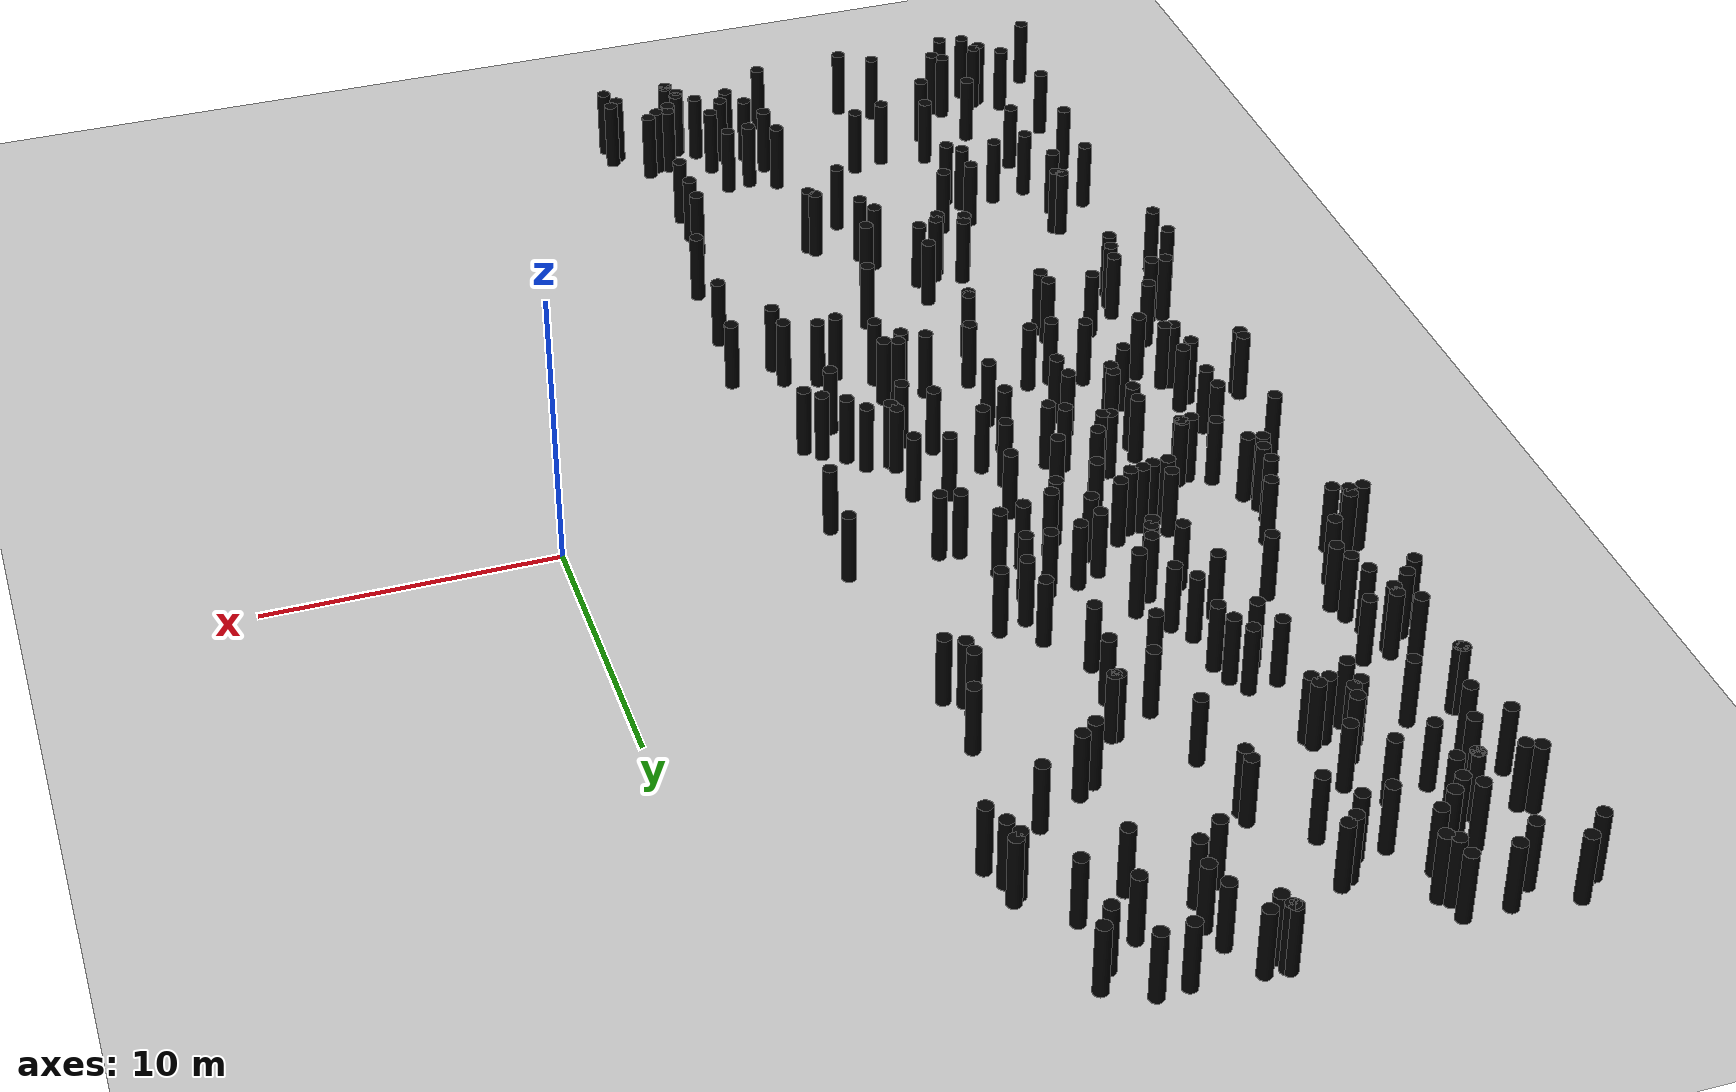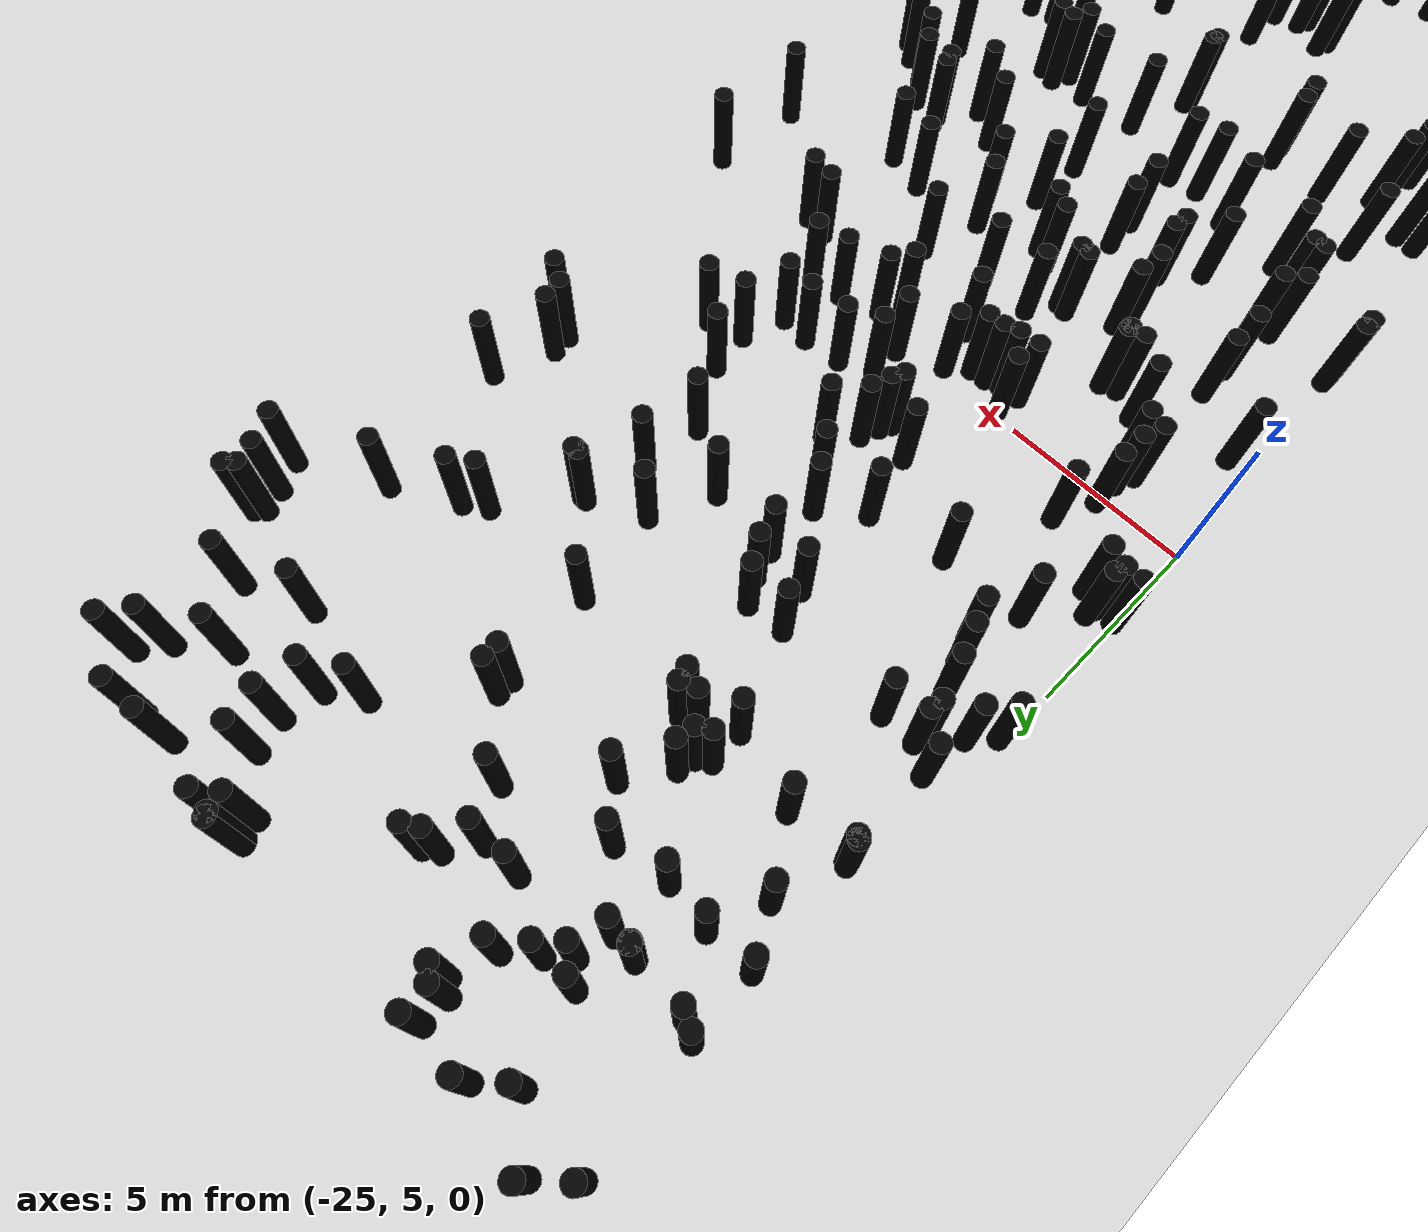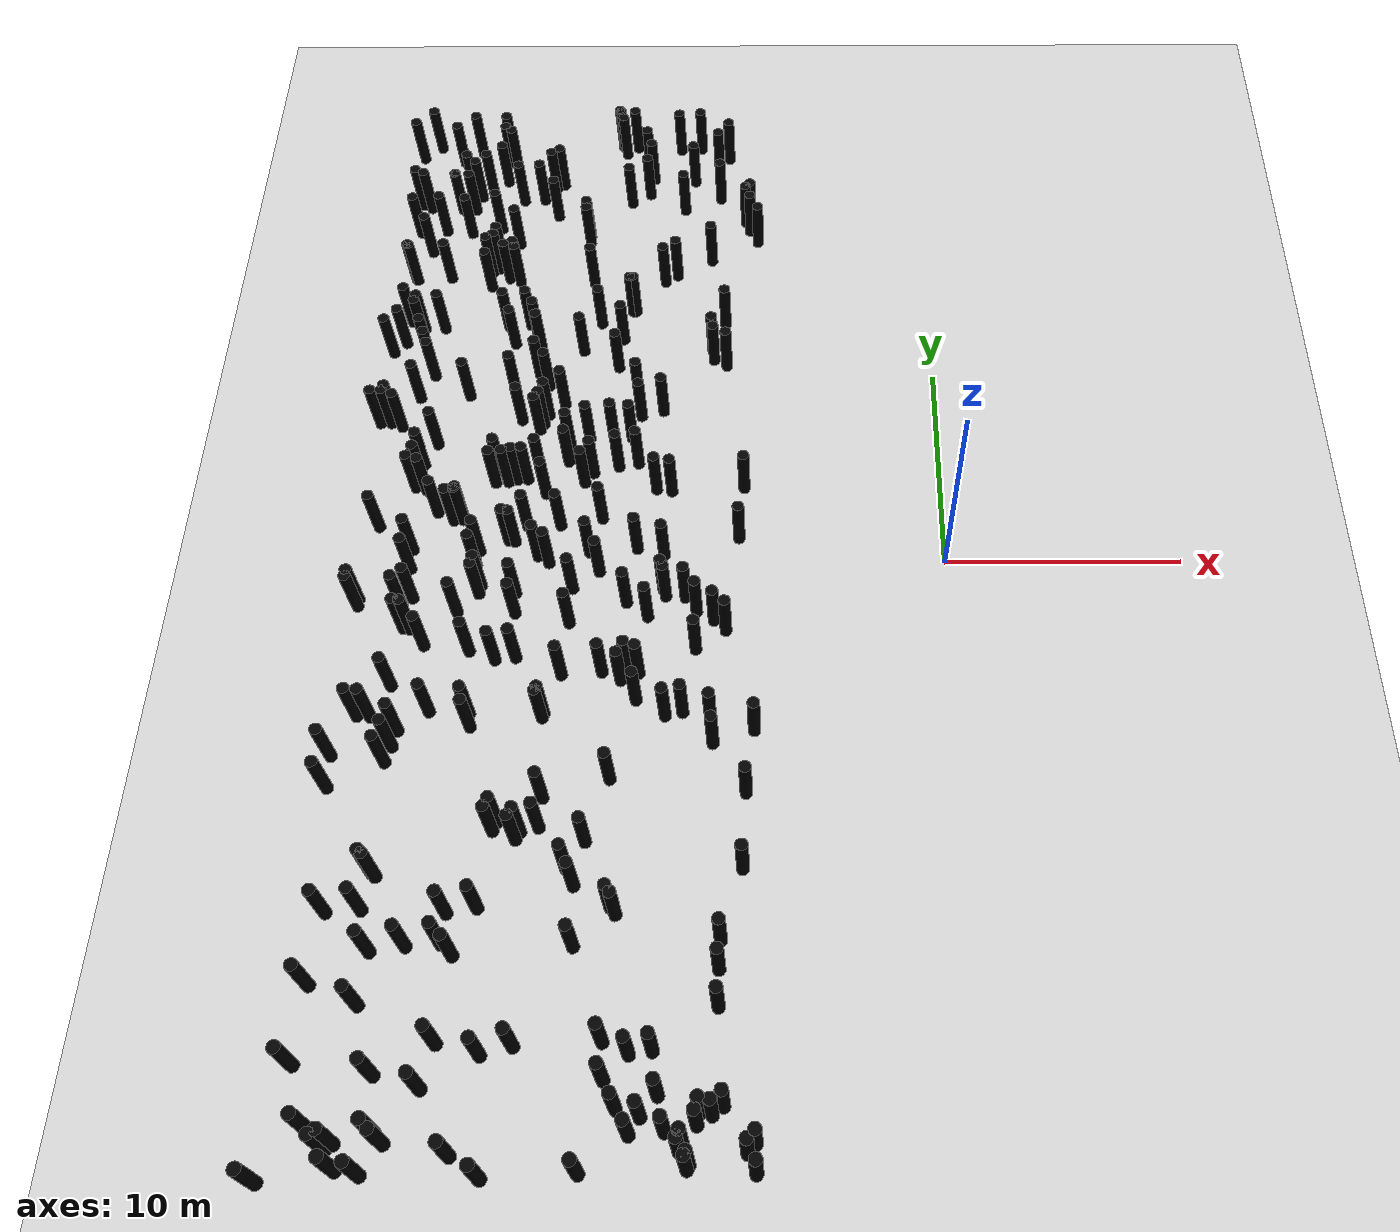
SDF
<sdf version="1.6">
 <world name="huge">
  <include><uri>model://ground_plane</uri></include>
  <include><uri>model://pole</uri><name>pole1</name><pose>-23.5 -23.08 0 0 0 0</pose></include>
  <include><uri>model://pole</uri><name>pole4</name><pose>-12.45 -20.58 0 0 0 0</pose></include>
  <include><uri>model://pole</uri><name>pole6</name><pose>-17.52 9.56 0 0 0 0</pose></include>
  <include><uri>model://pole</uri><name>pole10</name><pose>-24.74 -10.23 0 0 0 0</pose></include>
  <include><uri>model://pole</uri><name>pole12</name><pose>-8.45 -13.63 0 0 0 0</pose></include>
  <include><uri>model://pole</uri><name>pole13</name><pose>-21.98 24.53 0 0 0 0</pose></include>
  <include><uri>model://pole</uri><name>pole17</name><pose>-12.84 -6.46 0 0 0 0</pose></include>
  <include><uri>model://pole</uri><name>pole18</name><pose>-17.31 0.41 0 0 0 0</pose></include>
  <include><uri>model://pole</uri><name>pole25</name><pose>-18.38 -15.14 0 0 0 0</pose></include>
  <include><uri>model://pole</uri><name>pole26</name><pose>-19.12 -16.96 0 0 0 0</pose></include>
  <include><uri>model://pole</uri><name>pole27</name><pose>-22.33 -3.14 0 0 0 0</pose></include>
  <include><uri>model://pole</uri><name>pole28</name><pose>-8.06 -7.83 0 0 0 0</pose></include>
  <include><uri>model://pole</uri><name>pole35</name><pose>-22.28 -7.79 0 0 0 0</pose></include>
  <include><uri>model://pole</uri><name>pole36</name><pose>-14.11 5.05 0 0 0 0</pose></include>
  <include><uri>model://pole</uri><name>pole41</name><pose>-22.52 -13.73 0 0 0 0</pose></include>
  <include><uri>model://pole</uri><name>pole42</name><pose>-22.63 -3.09 0 0 0 0</pose></include>
  <include><uri>model://pole</uri><name>pole44</name><pose>-14.26 20.97 0 0 0 0</pose></include>
  <include><uri>model://pole</uri><name>pole45</name><pose>-22.54 -23.59 0 0 0 0</pose></include>
  <include><uri>model://pole</uri><name>pole46</name><pose>-19.91 -0.04 0 0 0 0</pose></include>
  <include><uri>model://pole</uri><name>pole51</name><pose>-9.84 -22.6 0 0 0 0</pose></include>
  <include><uri>model://pole</uri><name>pole53</name><pose>-16.06 11.62 0 0 0 0</pose></include>
  <include><uri>model://pole</uri><name>pole54</name><pose>-24.37 -20.89 0 0 0 0</pose></include>
  <include><uri>model://pole</uri><name>pole61</name><pose>-24.85 11.55 0 0 0 0</pose></include>
  <include><uri>model://pole</uri><name>pole64</name><pose>-13.2 -15.41 0 0 0 0</pose></include>
  <include><uri>model://pole</uri><name>pole69</name><pose>-20.47 24.51 0 0 0 0</pose></include>
  <include><uri>model://pole</uri><name>pole71</name><pose>-17.69 22.25 0 0 0 0</pose></include>
  <include><uri>model://pole</uri><name>pole77</name><pose>-11.36 -22.01 0 0 0 0</pose></include>
  <include><uri>model://pole</uri><name>pole79</name><pose>-22.35 -18.78 0 0 0 0</pose></include>
  <include><uri>model://pole</uri><name>pole82</name><pose>-11.87 16.22 0 0 0 0</pose></include>
  <include><uri>model://pole</uri><name>pole83</name><pose>-8.44 19.1 0 0 0 0</pose></include>
  <include><uri>model://pole</uri><name>pole89</name><pose>-9.89 21.25 0 0 0 0</pose></include>
  <include><uri>model://pole</uri><name>pole95</name><pose>-21.83 2.65 0 0 0 0</pose></include>
  <include><uri>model://pole</uri><name>pole96</name><pose>-9.24 -16.42 0 0 0 0</pose></include>
  <include><uri>model://pole</uri><name>pole99</name><pose>-11.63 20.49 0 0 0 0</pose></include>
  <include><uri>model://pole</uri><name>pole101</name><pose>-23.21 19.14 0 0 0 0</pose></include>
  <include><uri>model://pole</uri><name>pole102</name><pose>-14.28 -5.19 0 0 0 0</pose></include>
  <include><uri>model://pole</uri><name>pole114</name><pose>-22.67 16.11 0 0 0 0</pose></include>
  <include><uri>model://pole</uri><name>pole118</name><pose>-8.65 19.68 0 0 0 0</pose></include>
  <include><uri>model://pole</uri><name>pole120</name><pose>-24.67 -2.02 0 0 0 0</pose></include>
  <include><uri>model://pole</uri><name>pole124</name><pose>-14.68 24.38 0 0 0 0</pose></include>
  <include><uri>model://pole</uri><name>pole125</name><pose>-19.52 -15.34 0 0 0 0</pose></include>
  <include><uri>model://pole</uri><name>pole128</name><pose>-13.23 22.6 0 0 0 0</pose></include>
  <include><uri>model://pole</uri><name>pole130</name><pose>-22.67 -0.21 0 0 0 0</pose></include>
  <include><uri>model://pole</uri><name>pole137</name><pose>-12.33 -23.34 0 0 0 0</pose></include>
  <include><uri>model://pole</uri><name>pole138</name><pose>-18.47 -24.01 0 0 0 0</pose></include>
  <include><uri>model://pole</uri><name>pole141</name><pose>-16.33 -11.93 0 0 0 0</pose></include>
  <include><uri>model://pole</uri><name>pole143</name><pose>-21.1 2.24 0 0 0 0</pose></include>
  <include><uri>model://pole</uri><name>pole145</name><pose>-24.33 12.11 0 0 0 0</pose></include>
  <include><uri>model://pole</uri><name>pole149</name><pose>-22.46 3.84 0 0 0 0</pose></include>
  <include><uri>model://pole</uri><name>pole151</name><pose>-9.28 -17.5 0 0 0 0</pose></include>
  <include><uri>model://pole</uri><name>pole152</name><pose>-18.91 4.25 0 0 0 0</pose></include>
  <include><uri>model://pole</uri><name>pole153</name><pose>-16.18 18.79 0 0 0 0</pose></include>
  <include><uri>model://pole</uri><name>pole155</name><pose>-13.71 -9.92 0 0 0 0</pose></include>
  <include><uri>model://pole</uri><name>pole159</name><pose>-9.03 -22.38 0 0 0 0</pose></include>
  <include><uri>model://pole</uri><name>pole164</name><pose>-12.4 3.84 0 0 0 0</pose></include>
  <include><uri>model://pole</uri><name>pole168</name><pose>-17.55 4.84 0 0 0 0</pose></include>
  <include><uri>model://pole</uri><name>pole172</name><pose>-9.95 -23.01 0 0 0 0</pose></include>
  <include><uri>model://pole</uri><name>pole179</name><pose>-9.45 10.71 0 0 0 0</pose></include>
  <include><uri>model://pole</uri><name>pole187</name><pose>-23.46 -7.16 0 0 0 0</pose></include>
  <include><uri>model://pole</uri><name>pole192</name><pose>-23.01 10.81 0 0 0 0</pose></include>
  <include><uri>model://pole</uri><name>pole194</name><pose>-19.66 -1.44 0 0 0 0</pose></include>
  <include><uri>model://pole</uri><name>pole195</name><pose>-14.7 -16.63 0 0 0 0</pose></include>
  <include><uri>model://pole</uri><name>pole196</name><pose>-20.7 2.27 0 0 0 0</pose></include>
  <include><uri>model://pole</uri><name>pole197</name><pose>-13.44 -1.9 0 0 0 0</pose></include>
  <include><uri>model://pole</uri><name>pole198</name><pose>-15.32 13.26 0 0 0 0</pose></include>
  <include><uri>model://pole</uri><name>pole201</name><pose>-11.73 3.72 0 0 0 0</pose></include>
  <include><uri>model://pole</uri><name>pole213</name><pose>-24.04 -15.29 0 0 0 0</pose></include>
  <include><uri>model://pole</uri><name>pole215</name><pose>-22.6 20.61 0 0 0 0</pose></include>
  <include><uri>model://pole</uri><name>pole217</name><pose>-13.23 7.83 0 0 0 0</pose></include>
  <include><uri>model://pole</uri><name>pole228</name><pose>-17.35 -24.76 0 0 0 0</pose></include>
  <include><uri>model://pole</uri><name>pole229</name><pose>-14.0 -24.61 0 0 0 0</pose></include>
  <include><uri>model://pole</uri><name>pole238</name><pose>-18.63 1.21 0 0 0 0</pose></include>
  <include><uri>model://pole</uri><name>pole239</name><pose>-19.57 18.27 0 0 0 0</pose></include>
  <include><uri>model://pole</uri><name>pole241</name><pose>-15.2 4.71 0 0 0 0</pose></include>
  <include><uri>model://pole</uri><name>pole248</name><pose>-19.34 4.86 0 0 0 0</pose></include>
  <include><uri>model://pole</uri><name>pole254</name><pose>-18.12 -1.43 0 0 0 0</pose></include>
  <include><uri>model://pole</uri><name>pole255</name><pose>-22.84 -2.0 0 0 0 0</pose></include>
  <include><uri>model://pole</uri><name>pole264</name><pose>-21.68 -3.92 0 0 0 0</pose></include>
  <include><uri>model://pole</uri><name>pole266</name><pose>-12.53 -2.59 0 0 0 0</pose></include>
  <include><uri>model://pole</uri><name>pole269</name><pose>-18.59 7.63 0 0 0 0</pose></include>
  <include><uri>model://pole</uri><name>pole271</name><pose>-12.25 8.11 0 0 0 0</pose></include>
  <include><uri>model://pole</uri><name>pole274</name><pose>-14.43 6.73 0 0 0 0</pose></include>
  <include><uri>model://pole</uri><name>pole276</name><pose>-11.64 -7.17 0 0 0 0</pose></include>
  <include><uri>model://pole</uri><name>pole277</name><pose>-16.51 -7.06 0 0 0 0</pose></include>
  <include><uri>model://pole</uri><name>pole279</name><pose>-14.84 -14.28 0 0 0 0</pose></include>
  <include><uri>model://pole</uri><name>pole280</name><pose>-24.46 19.06 0 0 0 0</pose></include>
  <include><uri>model://pole</uri><name>pole285</name><pose>-19.47 4.21 0 0 0 0</pose></include>
  <include><uri>model://pole</uri><name>pole287</name><pose>-19.74 -21.75 0 0 0 0</pose></include>
  <include><uri>model://pole</uri><name>pole292</name><pose>-11.95 24.65 0 0 0 0</pose></include>
  <include><uri>model://pole</uri><name>pole300</name><pose>-19.83 0.66 0 0 0 0</pose></include>
  <include><uri>model://pole</uri><name>pole301</name><pose>-10.03 11.06 0 0 0 0</pose></include>
  <include><uri>model://pole</uri><name>pole302</name><pose>-13.1 0.76 0 0 0 0</pose></include>
  <include><uri>model://pole</uri><name>pole306</name><pose>-16.33 6.21 0 0 0 0</pose></include>
  <include><uri>model://pole</uri><name>pole308</name><pose>-10.44 -23.64 0 0 0 0</pose></include>
  <include><uri>model://pole</uri><name>pole312</name><pose>-11.95 -22.74 0 0 0 0</pose></include>
  <include><uri>model://pole</uri><name>pole315</name><pose>-18.08 4.39 0 0 0 0</pose></include>
  <include><uri>model://pole</uri><name>pole320</name><pose>-18.27 12.55 0 0 0 0</pose></include>
  <include><uri>model://pole</uri><name>pole324</name><pose>-19.06 9.41 0 0 0 0</pose></include>
  <include><uri>model://pole</uri><name>pole325</name><pose>-21.49 -24.63 0 0 0 0</pose></include>
  <include><uri>model://pole</uri><name>pole327</name><pose>-22.41 -1.65 0 0 0 0</pose></include>
  <include><uri>model://pole</uri><name>pole329</name><pose>-14.89 24.92 0 0 0 0</pose></include>
  <include><uri>model://pole</uri><name>pole334</name><pose>-9.54 13.2 0 0 0 0</pose></include>
  <include><uri>model://pole</uri><name>pole335</name><pose>-18.52 4.37 0 0 0 0</pose></include>
  <include><uri>model://pole</uri><name>pole337</name><pose>-10.01 23.32 0 0 0 0</pose></include>
  <include><uri>model://pole</uri><name>pole338</name><pose>-13.31 -21.47 0 0 0 0</pose></include>
  <include><uri>model://pole</uri><name>pole343</name><pose>-21.22 21.9 0 0 0 0</pose></include>
  <include><uri>model://pole</uri><name>pole344</name><pose>-9.81 -7.39 0 0 0 0</pose></include>
  <include><uri>model://pole</uri><name>pole345</name><pose>-22.64 12.99 0 0 0 0</pose></include>
  <include><uri>model://pole</uri><name>pole353</name><pose>-22.59 20.58 0 0 0 0</pose></include>
  <include><uri>model://pole</uri><name>pole360</name><pose>-13.48 23.47 0 0 0 0</pose></include>
  <include><uri>model://pole</uri><name>pole362</name><pose>-17.84 20.13 0 0 0 0</pose></include>
  <include><uri>model://pole</uri><name>pole364</name><pose>-13.25 5.22 0 0 0 0</pose></include>
  <include><uri>model://pole</uri><name>pole372</name><pose>-22.23 6.31 0 0 0 0</pose></include>
  <include><uri>model://pole</uri><name>pole373</name><pose>-21.14 -23.26 0 0 0 0</pose></include>
  <include><uri>model://pole</uri><name>pole375</name><pose>-8.58 3.89 0 0 0 0</pose></include>
  <include><uri>model://pole</uri><name>pole379</name><pose>-9.77 -2.78 0 0 0 0</pose></include>
  <include><uri>model://pole</uri><name>pole386</name><pose>-20.44 23.8 0 0 0 0</pose></include>
  <include><uri>model://pole</uri><name>pole388</name><pose>-19.58 -16.51 0 0 0 0</pose></include>
  <include><uri>model://pole</uri><name>pole389</name><pose>-15.82 15.8 0 0 0 0</pose></include>
  <include><uri>model://pole</uri><name>pole390</name><pose>-15.93 -5.29 0 0 0 0</pose></include>
  <include><uri>model://pole</uri><name>pole393</name><pose>-22.71 5.2 0 0 0 0</pose></include>
  <include><uri>model://pole</uri><name>pole395</name><pose>-23.31 8.9 0 0 0 0</pose></include>
  <include><uri>model://pole</uri><name>pole397</name><pose>-24.94 7.49 0 0 0 0</pose></include>
  <include><uri>model://pole</uri><name>pole401</name><pose>-11.6 -20.46 0 0 0 0</pose></include>
  <include><uri>model://pole</uri><name>pole403</name><pose>-13.4 -15.13 0 0 0 0</pose></include>
  <include><uri>model://pole</uri><name>pole405</name><pose>-13.75 13.99 0 0 0 0</pose></include>
  <include><uri>model://pole</uri><name>pole408</name><pose>-9.27 -3.25 0 0 0 0</pose></include>
  <include><uri>model://pole</uri><name>pole412</name><pose>-12.82 -22.46 0 0 0 0</pose></include>
  <include><uri>model://pole</uri><name>pole420</name><pose>-10.94 -7.02 0 0 0 0</pose></include>
  <include><uri>model://pole</uri><name>pole422</name><pose>-24.12 20.67 0 0 0 0</pose></include>
  <include><uri>model://pole</uri><name>pole423</name><pose>-8.43 19.91 0 0 0 0</pose></include>
  <include><uri>model://pole</uri><name>pole425</name><pose>-13.39 21.57 0 0 0 0</pose></include>
  <include><uri>model://pole</uri><name>pole429</name><pose>-10.11 11.6 0 0 0 0</pose></include>
  <include><uri>model://pole</uri><name>pole434</name><pose>-7.86 -24.63 0 0 0 0</pose></include>
  <include><uri>model://pole</uri><name>pole435</name><pose>-18.06 -2.4 0 0 0 0</pose></include>
  <include><uri>model://pole</uri><name>pole436</name><pose>-19.27 12.05 0 0 0 0</pose></include>
  <include><uri>model://pole</uri><name>pole437</name><pose>-9.7 -8.39 0 0 0 0</pose></include>
  <include><uri>model://pole</uri><name>pole438</name><pose>-19.47 16.24 0 0 0 0</pose></include>
  <include><uri>model://pole</uri><name>pole442</name><pose>-22.19 -16.8 0 0 0 0</pose></include>
  <include><uri>model://pole</uri><name>pole443</name><pose>-13.41 8.99 0 0 0 0</pose></include>
  <include><uri>model://pole</uri><name>pole444</name><pose>-24.87 24.11 0 0 0 0</pose></include>
  <include><uri>model://pole</uri><name>pole449</name><pose>-20.32 17.15 0 0 0 0</pose></include>
  <include><uri>model://pole</uri><name>pole451</name><pose>-22.62 -9.16 0 0 0 0</pose></include>
  <include><uri>model://pole</uri><name>pole452</name><pose>-17.41 7.91 0 0 0 0</pose></include>
  <include><uri>model://pole</uri><name>pole465</name><pose>-20.81 -23.59 0 0 0 0</pose></include>
  <include><uri>model://pole</uri><name>pole466</name><pose>-13.42 -20.13 0 0 0 0</pose></include>
  <include><uri>model://pole</uri><name>pole467</name><pose>-10.91 24.73 0 0 0 0</pose></include>
  <include><uri>model://pole</uri><name>pole469</name><pose>-23.95 7.28 0 0 0 0</pose></include>
  <include><uri>model://pole</uri><name>pole473</name><pose>-23.58 12.97 0 0 0 0</pose></include>
  <include><uri>model://pole</uri><name>pole475</name><pose>-22.71 -15.2 0 0 0 0</pose></include>
  <include><uri>model://pole</uri><name>pole476</name><pose>-14.68 2.31 0 0 0 0</pose></include>
  <include><uri>model://pole</uri><name>pole478</name><pose>-19.5 -7.05 0 0 0 0</pose></include>
  <include><uri>model://pole</uri><name>pole481</name><pose>-24.21 13.41 0 0 0 0</pose></include>
  <include><uri>model://pole</uri><name>pole483</name><pose>-16.34 5.33 0 0 0 0</pose></include>
  <include><uri>model://pole</uri><name>pole485</name><pose>-16.6 -20.28 0 0 0 0</pose></include>
  <include><uri>model://pole</uri><name>pole488</name><pose>-16.16 18.36 0 0 0 0</pose></include>
  <include><uri>model://pole</uri><name>pole489</name><pose>-18.64 13.19 0 0 0 0</pose></include>
  <include><uri>model://pole</uri><name>pole490</name><pose>-18.6 21.22 0 0 0 0</pose></include>
  <include><uri>model://pole</uri><name>pole491</name><pose>-9.28 -18.88 0 0 0 0</pose></include>
  <include><uri>model://pole</uri><name>pole495</name><pose>-22.79 -23.75 0 0 0 0</pose></include>
  <include><uri>model://pole</uri><name>pole497</name><pose>-8.06 18.35 0 0 0 0</pose></include>
  <include><uri>model://pole</uri><name>pole498</name><pose>-14.66 -0.38 0 0 0 0</pose></include>
  <include><uri>model://pole</uri><name>pole499</name><pose>-10.5 -2.34 0 0 0 0</pose></include>
  <include><uri>model://pole</uri><name>pole501</name><pose>-10.26 -24.48 0 0 0 0</pose></include>
  <include><uri>model://pole</uri><name>pole512</name><pose>-25.0 -24.85 0 0 0 0</pose></include>
  <include><uri>model://pole</uri><name>pole516</name><pose>-12.44 15.82 0 0 0 0</pose></include>
  <include><uri>model://pole</uri><name>pole518</name><pose>-20.74 16.48 0 0 0 0</pose></include>
  <include><uri>model://pole</uri><name>pole519</name><pose>-17.85 -4.5 0 0 0 0</pose></include>
  <include><uri>model://pole</uri><name>pole524</name><pose>-15.13 0.59 0 0 0 0</pose></include>
  <include><uri>model://pole</uri><name>pole525</name><pose>-17.88 1.93 0 0 0 0</pose></include>
  <include><uri>model://pole</uri><name>pole529</name><pose>-19.37 -20.17 0 0 0 0</pose></include>
  <include><uri>model://pole</uri><name>pole532</name><pose>-20.89 -16.6 0 0 0 0</pose></include>
  <include><uri>model://pole</uri><name>pole533</name><pose>-10.2 -24.34 0 0 0 0</pose></include>
  <include><uri>model://pole</uri><name>pole534</name><pose>-16.73 8.54 0 0 0 0</pose></include>
  <include><uri>model://pole</uri><name>pole538</name><pose>-13.5 -5.57 0 0 0 0</pose></include>
  <include><uri>model://pole</uri><name>pole544</name><pose>-15.74 -1.22 0 0 0 0</pose></include>
  <include><uri>model://pole</uri><name>pole545</name><pose>-13.61 6.65 0 0 0 0</pose></include>
  <include><uri>model://pole</uri><name>pole547</name><pose>-22.79 -5.78 0 0 0 0</pose></include>
  <include><uri>model://pole</uri><name>pole549</name><pose>-20.7 15.56 0 0 0 0</pose></include>
  <include><uri>model://pole</uri><name>pole553</name><pose>-19.79 -4.19 0 0 0 0</pose></include>
  <include><uri>model://pole</uri><name>pole556</name><pose>-19.66 13.09 0 0 0 0</pose></include>
  <include><uri>model://pole</uri><name>pole561</name><pose>-16.46 1.97 0 0 0 0</pose></include>
  <include><uri>model://pole</uri><name>pole564</name><pose>-24.35 16.05 0 0 0 0</pose></include>
  <include><uri>model://pole</uri><name>pole567</name><pose>-21.12 -6.95 0 0 0 0</pose></include>
  <include><uri>model://pole</uri><name>pole569</name><pose>-17.21 3.61 0 0 0 0</pose></include>
  <include><uri>model://pole</uri><name>pole581</name><pose>-21.08 9.02 0 0 0 0</pose></include>
  <include><uri>model://pole</uri><name>pole583</name><pose>-18.1 -12.06 0 0 0 0</pose></include>
  <include><uri>model://pole</uri><name>pole585</name><pose>-19.6 -1.06 0 0 0 0</pose></include>
  <include><uri>model://pole</uri><name>pole586</name><pose>-17.75 7.09 0 0 0 0</pose></include>
  <include><uri>model://pole</uri><name>pole589</name><pose>-18.06 22.01 0 0 0 0</pose></include>
  <include><uri>model://pole</uri><name>pole590</name><pose>-23.75 17.77 0 0 0 0</pose></include>
  <include><uri>model://pole</uri><name>pole591</name><pose>-11.19 22.43 0 0 0 0</pose></include>
  <include><uri>model://pole</uri><name>pole593</name><pose>-24.08 24.86 0 0 0 0</pose></include>
  <include><uri>model://pole</uri><name>pole594</name><pose>-19.41 -7.63 0 0 0 0</pose></include>
  <include><uri>model://pole</uri><name>pole596</name><pose>-22.36 -13.88 0 0 0 0</pose></include>
  <include><uri>model://pole</uri><name>pole598</name><pose>-22.16 21.86 0 0 0 0</pose></include>
  <include><uri>model://pole</uri><name>pole602</name><pose>-11.08 -23.23 0 0 0 0</pose></include>
  <include><uri>model://pole</uri><name>pole603</name><pose>-11.81 -1.6 0 0 0 0</pose></include>
  <include><uri>model://pole</uri><name>pole604</name><pose>-13.9 13.99 0 0 0 0</pose></include>
  <include><uri>model://pole</uri><name>pole608</name><pose>-22.35 -24.47 0 0 0 0</pose></include>
  <include><uri>model://pole</uri><name>pole612</name><pose>-24.54 20.88 0 0 0 0</pose></include>
  <include><uri>model://pole</uri><name>pole616</name><pose>-9.51 24.01 0 0 0 0</pose></include>
  <include><uri>model://pole</uri><name>pole617</name><pose>-18.05 11.81 0 0 0 0</pose></include>
  <include><uri>model://pole</uri><name>pole622</name><pose>-19.37 15.89 0 0 0 0</pose></include>
  <include><uri>model://pole</uri><name>pole623</name><pose>-8.77 1.29 0 0 0 0</pose></include>
  <include><uri>model://pole</uri><name>pole624</name><pose>-15.49 6.61 0 0 0 0</pose></include>
  <include><uri>model://pole</uri><name>pole626</name><pose>-11.92 -1.29 0 0 0 0</pose></include>
  <include><uri>model://pole</uri><name>pole628</name><pose>-24.67 -1.71 0 0 0 0</pose></include>
  <include><uri>model://pole</uri><name>pole634</name><pose>-14.83 24.84 0 0 0 0</pose></include>
  <include><uri>model://pole</uri><name>pole635</name><pose>-7.89 -23.66 0 0 0 0</pose></include>
  <include><uri>model://pole</uri><name>pole636</name><pose>-20.41 16.7 0 0 0 0</pose></include>
  <include><uri>model://pole</uri><name>pole638</name><pose>-18.0 10.27 0 0 0 0</pose></include>
  <include><uri>model://pole</uri><name>pole641</name><pose>-9.42 -22.68 0 0 0 0</pose></include>
  <include><uri>model://pole</uri><name>pole642</name><pose>-20.51 22.48 0 0 0 0</pose></include>
  <include><uri>model://pole</uri><name>pole644</name><pose>-20.48 -2.34 0 0 0 0</pose></include>
  <include><uri>model://pole</uri><name>pole652</name><pose>-17.75 -20.59 0 0 0 0</pose></include>
  <include><uri>model://pole</uri><name>pole655</name><pose>-19.88 16.07 0 0 0 0</pose></include>
  <include><uri>model://pole</uri><name>pole656</name><pose>-16.57 -7.23 0 0 0 0</pose></include>
  <include><uri>model://pole</uri><name>pole658</name><pose>-24.27 1.92 0 0 0 0</pose></include>
  <include><uri>model://pole</uri><name>pole659</name><pose>-23.63 12.64 0 0 0 0</pose></include>
  <include><uri>model://pole</uri><name>pole681</name><pose>-24.37 7.77 0 0 0 0</pose></include>
  <include><uri>model://pole</uri><name>pole688</name><pose>-22.42 -8.48 0 0 0 0</pose></include>
  <include><uri>model://pole</uri><name>pole691</name><pose>-10.54 -23.9 0 0 0 0</pose></include>
  <include><uri>model://pole</uri><name>pole696</name><pose>-15.77 -2.87 0 0 0 0</pose></include>
  <include><uri>model://pole</uri><name>pole697</name><pose>-16.83 0.07 0 0 0 0</pose></include>
  <include><uri>model://pole</uri><name>pole698</name><pose>-21.46 -21.27 0 0 0 0</pose></include>
  <include><uri>model://pole</uri><name>pole700</name><pose>-22.94 3.98 0 0 0 0</pose></include>
  <include><uri>model://pole</uri><name>pole705</name><pose>-17.03 -12.11 0 0 0 0</pose></include>
  <include><uri>model://pole</uri><name>pole707</name><pose>-11.95 0.42 0 0 0 0</pose></include>
  <include><uri>model://pole</uri><name>pole709</name><pose>-14.4 10.64 0 0 0 0</pose></include>
  <include><uri>model://pole</uri><name>pole710</name><pose>-14.24 12.29 0 0 0 0</pose></include>
  <include><uri>model://pole</uri><name>pole713</name><pose>-24.24 -18.03 0 0 0 0</pose></include>
  <include><uri>model://pole</uri><name>pole715</name><pose>-17.95 -11.7 0 0 0 0</pose></include>
  <include><uri>model://pole</uri><name>pole717</name><pose>-14.51 -12.52 0 0 0 0</pose></include>
  <include><uri>model://pole</uri><name>pole721</name><pose>-12.78 -5.24 0 0 0 0</pose></include>
  <include><uri>model://pole</uri><name>pole728</name><pose>-20.55 19.29 0 0 0 0</pose></include>
  <include><uri>model://pole</uri><name>pole730</name><pose>-18.69 -4.6 0 0 0 0</pose></include>
  <include><uri>model://pole</uri><name>pole733</name><pose>-24.28 15.99 0 0 0 0</pose></include>
  <include><uri>model://pole</uri><name>pole735</name><pose>-21.97 19.0 0 0 0 0</pose></include>
  <include><uri>model://pole</uri><name>pole736</name><pose>-15.17 -13.58 0 0 0 0</pose></include>
  <include><uri>model://pole</uri><name>pole739</name><pose>-21.93 20.56 0 0 0 0</pose></include>
  <include><uri>model://pole</uri><name>pole745</name><pose>-8.36 -10.52 0 0 0 0</pose></include>
  <include><uri>model://pole</uri><name>pole747</name><pose>-21.71 21.42 0 0 0 0</pose></include>
  <include><uri>model://pole</uri><name>pole748</name><pose>-10.49 -4.13 0 0 0 0</pose></include>
  <include><uri>model://pole</uri><name>pole749</name><pose>-23.99 -7.13 0 0 0 0</pose></include>
  <include><uri>model://pole</uri><name>pole751</name><pose>-10.98 -1.66 0 0 0 0</pose></include>
  <include><uri>model://pole</uri><name>pole753</name><pose>-8.17 -23.96 0 0 0 0</pose></include>
  <include><uri>model://pole</uri><name>pole754</name><pose>-18.36 1.14 0 0 0 0</pose></include>
  <include><uri>model://pole</uri><name>pole759</name><pose>-22.83 23.85 0 0 0 0</pose></include>
  <include><uri>model://pole</uri><name>pole760</name><pose>-14.14 24.83 0 0 0 0</pose></include>
  <include><uri>model://pole</uri><name>pole761</name><pose>-22.69 0.74 0 0 0 0</pose></include>
  <include><uri>model://pole</uri><name>pole764</name><pose>-24.78 -8.88 0 0 0 0</pose></include>
  <include><uri>model://pole</uri><name>pole767</name><pose>-20.7 2.38 0 0 0 0</pose></include>
  <include><uri>model://pole</uri><name>pole769</name><pose>-13.25 -5.08 0 0 0 0</pose></include>
  <include><uri>model://pole</uri><name>pole773</name><pose>-15.56 4.19 0 0 0 0</pose></include>
  <include><uri>model://pole</uri><name>pole774</name><pose>-23.28 11.56 0 0 0 0</pose></include>
  <include><uri>model://pole</uri><name>pole775</name><pose>-24.45 7.49 0 0 0 0</pose></include>
  <include><uri>model://pole</uri><name>pole778</name><pose>-17.19 -12.42 0 0 0 0</pose></include>
  <include><uri>model://pole</uri><name>pole779</name><pose>-22.74 4.51 0 0 0 0</pose></include>
  <include><uri>model://pole</uri><name>pole786</name><pose>-20.14 23.55 0 0 0 0</pose></include>
  <include><uri>model://pole</uri><name>pole788</name><pose>-16.28 -10.7 0 0 0 0</pose></include>
  <include><uri>model://pole</uri><name>pole789</name><pose>-10.25 17.16 0 0 0 0</pose></include>
  <include><uri>model://pole</uri><name>pole796</name><pose>-22.79 10.18 0 0 0 0</pose></include>
  <include><uri>model://pole</uri><name>pole799</name><pose>-17.59 7.4 0 0 0 0</pose></include>
  <include><uri>model://pole</uri><name>pole800</name><pose>-19.6 21.16 0 0 0 0</pose></include>
 </world>
</sdf>
